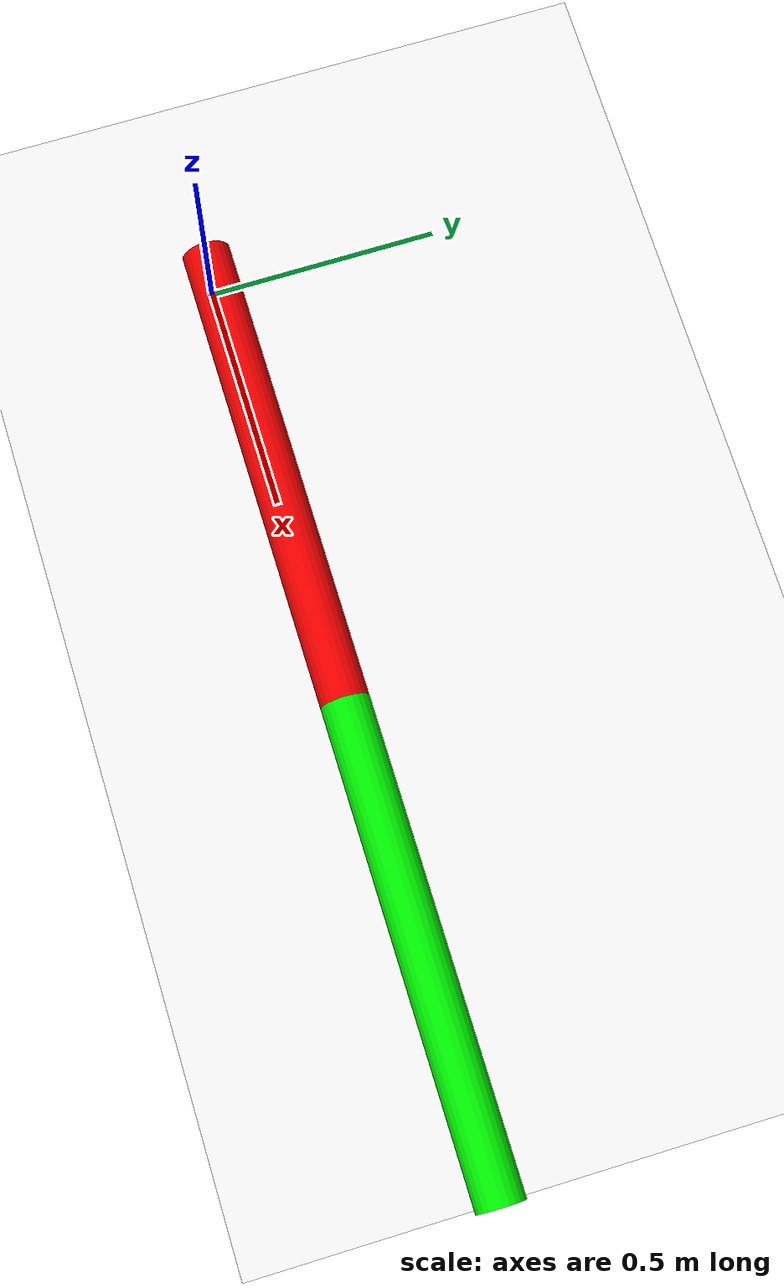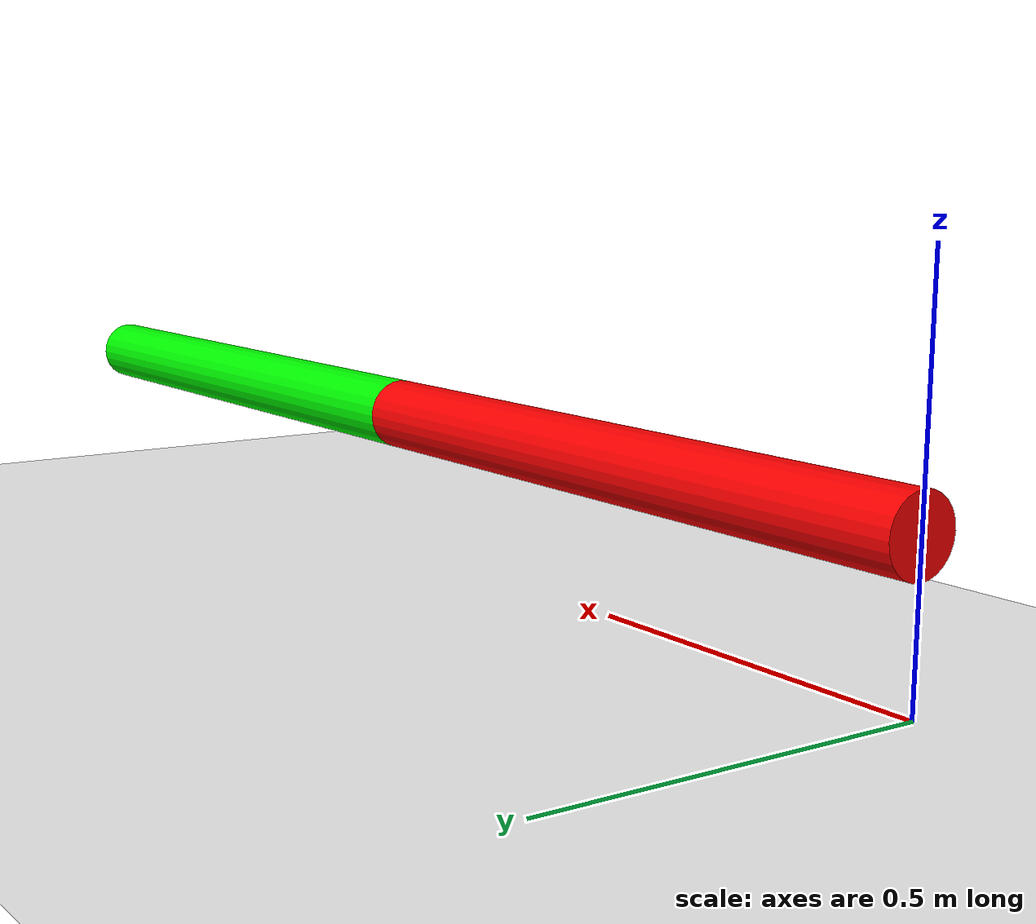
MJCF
<mujoco>
    <compiler angle="radian"/>
    <visual >
        <headlight ambient="0.5 0.5 0.5"/>
    </visual>
    <asset>
        <material name="white" rgba="1 1 1 1" />
    </asset>
    <option gravity="0 0 0"/>
    <worldbody>
        <light diffuse=".5 .5 .5" pos="0 0 10" dir="0 0 -1" />
        <geom type="plane" size="2 2 0.1" rgba="1 1 1 1" />
        <body pos="0.5 0 0.2" euler="0 1.57 0">
            <!--inertial pos="0 0 0" mass="1" diaginertia=".01 0.01 .01"/-->
            <joint type="hinge" axis="-1 0 0" pos="0 0 -0.5"/>
            <!--geom type="box" size=".1 .2 .3" material="white"/-->
            <geom type="cylinder" size=".05 .5" rgba="1 0 0 1"/>
            <body pos="0 0 1" euler="0 0 0">
                <joint type="hinge" axis="-1 0 0" pos="0 0 -0.5"/>
                <geom type="cylinder" size=".05 .5" rgba="0 1 0 1"/>
            </body>

        </body>

    </worldbody>
</mujoco>
